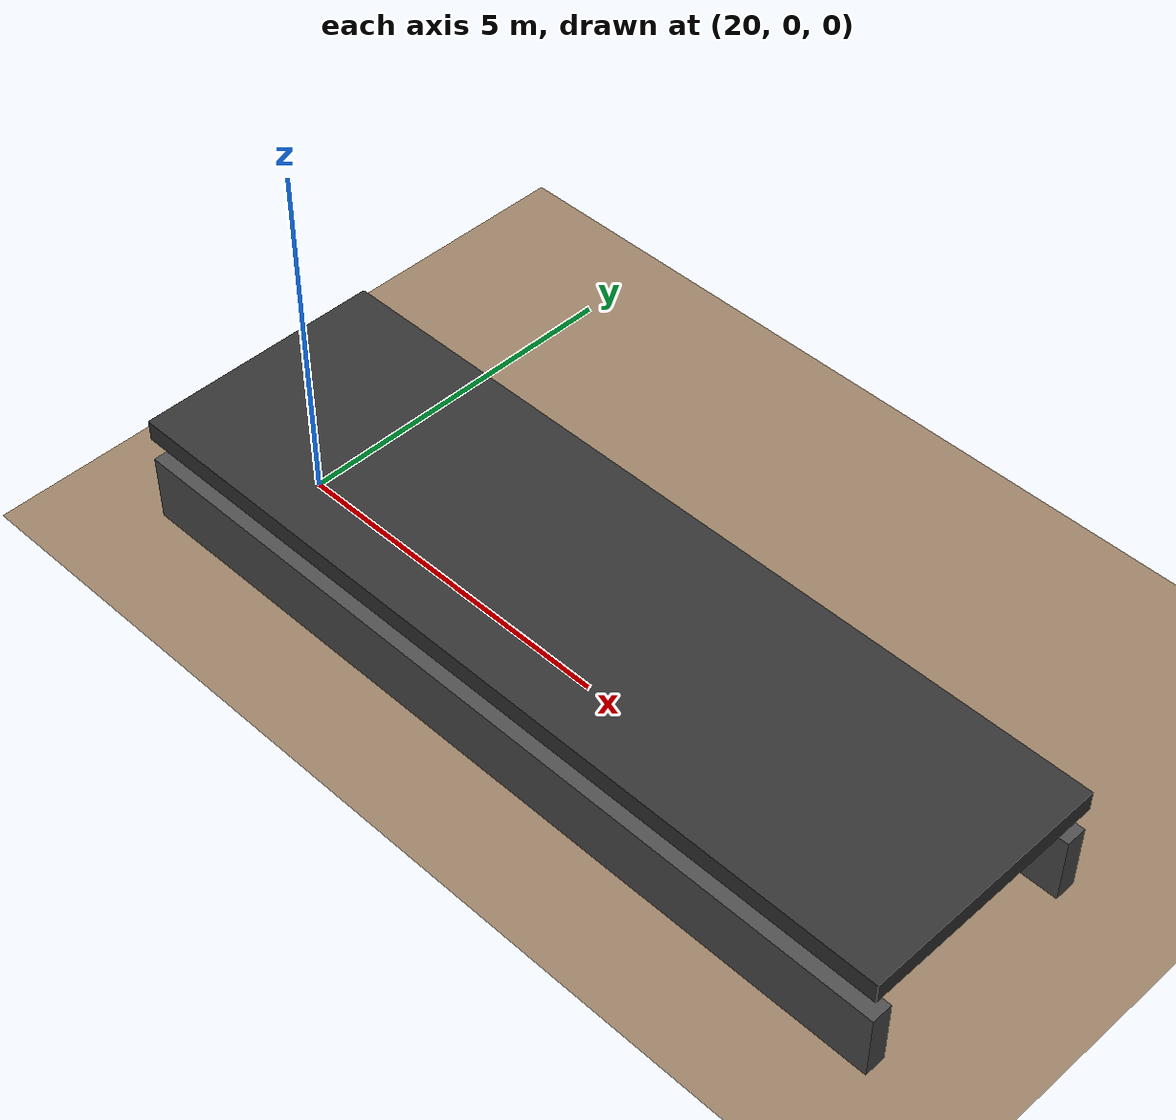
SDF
<?xml version="1.0" ?>
<!--
  arc_tunnel.sdf
  Sadece tünel geçiş testi için izole dünya.
  GPS-SLAM geçiş algoritmasını test etmek için kullanılır.

  TODO (Faz 1): Leo Rover'ın leo_obstacles.sdf tünel geometrisiyle eşleştir
-->
<sdf version="1.9">
  <world name="arc_tunnel">

    <physics name="default_physics" type="ode">
      <max_step_size>0.001</max_step_size>
      <real_time_factor>1.0</real_time_factor>
    </physics>

    <light name="sun" type="directional">
      <cast_shadows>true</cast_shadows>
      <pose>0 0 10 0 0 0</pose>
      <direction>-0.5 0.1 -0.9</direction>
      <diffuse>0.8 0.8 0.8 1</diffuse>
    </light>

    <spherical_coordinates>
      <surface_model>EARTH_WGS84</surface_model>
      <latitude_deg>39.925018</latitude_deg>
      <longitude_deg>32.836956</longitude_deg>
      <elevation>890.0</elevation>
    </spherical_coordinates>

    <!-- Zemin -->
    <model name="ground_plane">
      <static>true</static>
      <link name="link">
        <collision name="collision">
          <geometry>
            <plane><normal>0 0 1</normal><size>60 20</size></plane>
          </geometry>
        </collision>
        <visual name="visual">
          <cast_shadows>false</cast_shadows>
          <geometry>
            <plane><normal>0 0 1</normal><size>60 20</size></plane>
          </geometry>
          <material>
            <ambient>0.6 0.5 0.4 1</ambient>
          </material>
        </visual>
      </link>
    </model>

    <!-- Tünel duvarları (Earendil-Otonomius leo_obstacles.sdf ile aynı boyutlar) -->
    <model name="tunnel_wall_left">
      <static>true</static>
      <pose>25 1.65 0.5 0 0 0</pose>
      <link name="link">
        <collision name="c">
          <geometry><box><size>12 0.3 1.0</size></box></geometry>
        </collision>
        <visual name="v">
          <geometry><box><size>12 0.3 1.0</size></box></geometry>
          <material><ambient>0.3 0.3 0.3 1</ambient></material>
        </visual>
      </link>
    </model>

    <model name="tunnel_wall_right">
      <static>true</static>
      <pose>25 -1.65 0.5 0 0 0</pose>
      <link name="link">
        <collision name="c">
          <geometry><box><size>12 0.3 1.0</size></box></geometry>
        </collision>
        <visual name="v">
          <geometry><box><size>12 0.3 1.0</size></box></geometry>
          <material><ambient>0.3 0.3 0.3 1</ambient></material>
        </visual>
      </link>
    </model>

    <!-- Tünel çatısı (GPS sinyali kesiyor) -->
    <model name="tunnel_roof">
      <static>true</static>
      <pose>25 0 1.5 0 0 0</pose>
      <link name="link">
        <collision name="c">
          <geometry><box><size>12 3.6 0.3</size></box></geometry>
        </collision>
        <visual name="v">
          <geometry><box><size>12 3.6 0.3</size></box></geometry>
          <material><ambient>0.2 0.2 0.2 1</ambient></material>
        </visual>
      </link>
    </model>

  </world>
</sdf>
